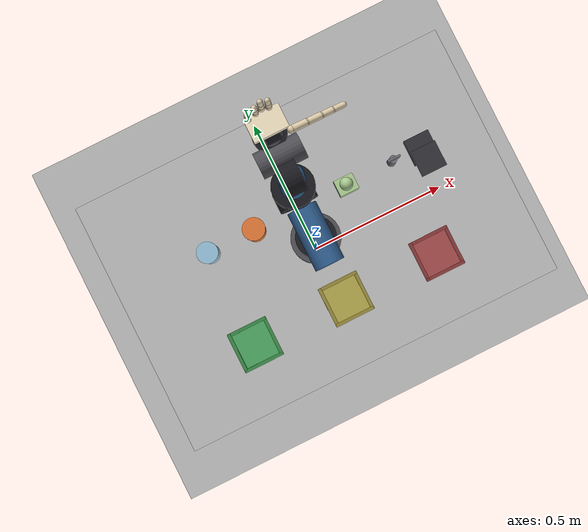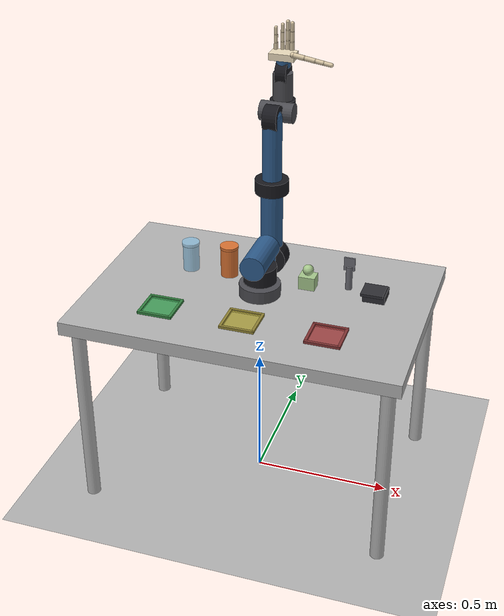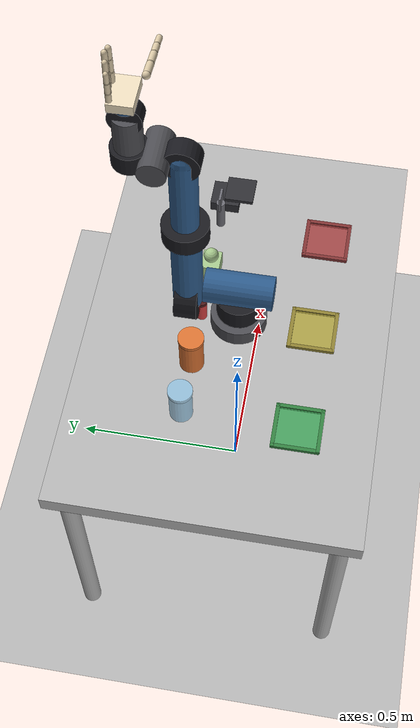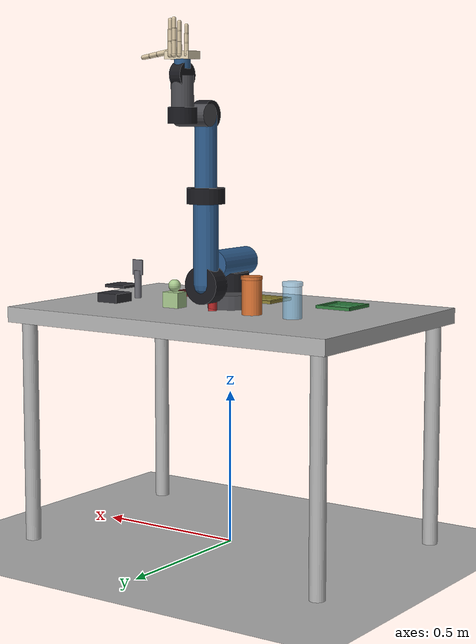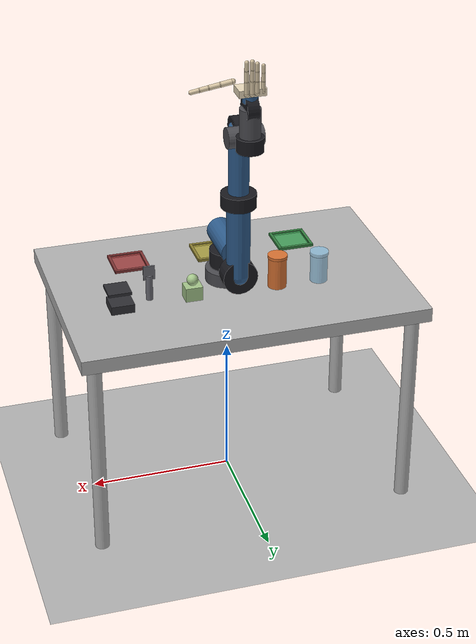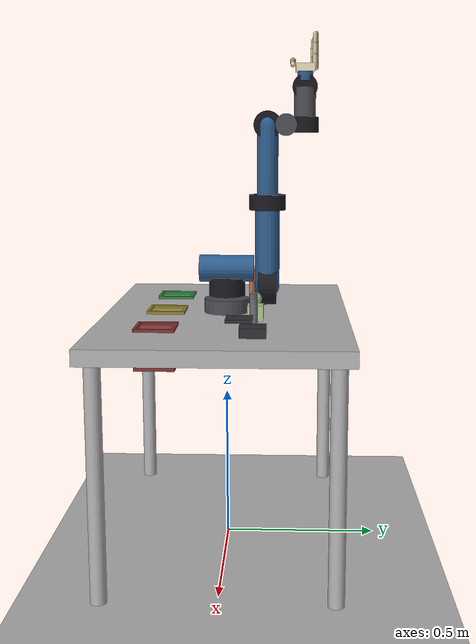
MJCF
<mujoco model="disaster_triage_scene">
  <compiler angle="radian" autolimits="true"
            coordinate="local" inertiafromgeom="true"
            discardvisual="false" />
  <option timestep="0.002" integrator="implicitfast" iterations="50"
          solver="Newton" gravity="0 0 -9.81" />

  <!-- DEFAULTS — class hierarchy for the whole scene               -->
  <default>
    <joint armature="0.05" damping="0.5" limited="true" />
    <geom condim="4" friction="1.0 0.05 0.02" rgba="0.7 0.7 0.7 1" />
    <position kp="60" ctrlrange="-1 1" />
    <light cutoff="45" exponent="10" directional="true" />
    <camera fovy="55" />

    <default class="ur5e">
      <joint range="-6.28 6.28" damping="20.0" armature="0.1" frictionloss="0.05" />
      <geom rgba="0.25 0.25 0.28 1" condim="4" friction="0.7 0.05 0.02" />
      <position kp="2000" kv="50" forcerange="-2000 2000" ctrlrange="-6.28 6.28" />
    </default>

    <default class="shadow_finger">
      <joint range="-1.57 1.57" damping="0.5" armature="0.005" />
      <geom rgba="0.85 0.78 0.65 1" condim="6" friction="1.5 0.05 0.02" />
      <position kp="30" kv="3" ctrlrange="-1.57 1.57" forcerange="-1.5 1.5" />
    </default>

    <default class="fragile">
      <geom rgba="0.55 0.78 0.92 0.7" condim="6" friction="1.5 0.10 0.05" />
      <joint damping="0.5" armature="0.001" />
    </default>
    <default class="sturdy">
      <geom rgba="0.85 0.45 0.20 1" condim="4" friction="1.2 0.10 0.05" />
      <joint damping="2.0" armature="0.01" />
    </default>
    <default class="hazardous">
      <geom rgba="0.85 0.18 0.18 0.85" condim="6" friction="0.5 0.05 0.02" />
      <joint damping="1.0" armature="0.005" />
    </default>
    <default class="soft">
      <geom rgba="0.65 0.78 0.55 1" condim="4" friction="1.5 0.15 0.08" />
      <joint damping="3.0" armature="0.005" />
    </default>
    <default class="sharp">
      <geom rgba="0.42 0.42 0.45 1" condim="6" friction="0.9 0.05 0.02" />
      <joint damping="1.5" armature="0.005" />
    </default>

    <default class="tactile_sensor">
      <site group="3" rgba="0.1 0.9 0.3 0.4" size="0.006 0.006 0.006" />
    </default>
  </default>

  <!-- ASSETS — textures                                            -->
  <asset>
    <texture name="tex_floor" type="2d" builtin="gradient"
            rgb1="0.18 0.18 0.22" rgb2="0.32 0.32 0.36" width="256" height="256" />
    <texture builtin="gradient" type="skybox" rgb1="0.4 0.5 0.7" rgb2="0.0 0.0 0.0"
            width="256" height="256" />
    <material name="mat_floor"  texture="tex_floor" specular="0.0" shininess="0.0" />
    <material name="mat_table"  rgba="0.55 0.42 0.28 1" specular="0.2" shininess="0.3" />
  </asset>

  <visual>
    <map fogstart="3" fogend="10" znear="0.05" zfar="50" />
    <quality shadowsize="2048" offsamples="4" />
    <global azimuth="-30" elevation="-20" offwidth="1280" offheight="720" />
    <scale framewidth="0.003" />
  </visual>

  <worldbody>
    <!-- Floor -->
    <geom name="floor" type="plane" size="3 3 0.1" material="mat_floor"
          condim="3" friction="0.8 0.05 0.02" />

    <!-- Lights -->
    <light name="key_light" pos="-1.5 -1.5 2.5" dir="0.4 0.4 -0.8"
           diffuse="0.7 0.7 0.7" castshadow="true" />
    <light name="fill_light" pos="1.5 -1.0 2.0" dir="-0.4 0.3 -0.8"
           diffuse="0.4 0.4 0.5" castshadow="false" />
    <light name="rim_light" pos="0 2.0 1.5" dir="0 -0.7 -0.5"
           diffuse="0.3 0.3 0.3" castshadow="false" />

    <!-- VIRTUAL CAMERAS — front / side / top / wrist                 -->
    <camera name="cam_front" pos="0.9 -0.9 1.4" xyaxes="-0.7 -0.7 0 -0.5 0.5 0.7"
            fovy="50" />
    <camera name="cam_side"  pos="-1.0 0 1.2" xyaxes="0 -1 0 -0.7 0 0.7"
            fovy="50" />
    <camera name="cam_top"   pos="0 0 1.6" xyaxes="1 0 0 0 -1 0" fovy="45" />
    <camera name="cam_wrist" pos="0 0 0" xyaxes="1 0 0 0 -1 0" fovy="60" />

    <!-- WORKBENCH TABLE — 1.2m × 0.8m × 0.75m                         -->
    <body name="table" pos="0 0 0.375">
      <geom name="geom_table_top" type="box" size="0.60 0.40 0.025"
            pos="0 0 0.375" material="mat_table" mass="15.0"
            friction="2.0 0.20 0.10" />
      <geom name="geom_table_leg1" type="cylinder" size="0.025 0.375"
            pos="-0.55 -0.35 0" material="mat_table" mass="1.0" />
      <geom name="geom_table_leg2" type="cylinder" size="0.025 0.375"
            pos="0.55 -0.35 0" material="mat_table" mass="1.0" />
      <geom name="geom_table_leg3" type="cylinder" size="0.025 0.375"
            pos="-0.55 0.35 0" material="mat_table" mass="1.0" />
      <geom name="geom_table_leg4" type="cylinder" size="0.025 0.375"
            pos="0.55 0.35 0" material="mat_table" mass="1.0" />
    </body>

    <!-- ROBOT: UR5e (6-DOF) + Shadow Hand Lite (16-DOF)               -->
    <body name="base_link" pos="0 0 0.781">
      <inertial pos="0 0 0" mass="2.0" diaginertia="0.005 0.005 0.005" />
      <geom name="base_geom" type="cylinder" size="0.075 0.040" rgba="0.30 0.30 0.32 1" />

      <!-- Shoulder joint (z-axis, base rotation). -->
      <body name="shoulder_link" pos="0 0 0.080">
        <inertial pos="0 0 0" mass="2.0" diaginertia="0.008 0.008 0.008" />
        <joint name="shoulder_pan_joint" axis="0 0 1" class="ur5e" range="-6.28 6.28" />
        <geom name="sh_joint_geom" type="cylinder" size="0.060 0.030"
              rgba="0.10 0.10 0.12 1" />
        <geom name="sh_link_geom"  type="cylinder" size="0.045 0.090"
              euler="1.5708 0 0" pos="0 0 0.060" rgba="0.18 0.36 0.55 1" />

        <!-- Upper arm (y-axis, shoulder lift). -->
        <body name="upper_arm_link" pos="0 0.135 0">
          <inertial pos="0 0 0.140" mass="3.42" diaginertia="0.025 0.025 0.005" />
          <joint name="shoulder_lift_joint" axis="0 1 0" class="ur5e"
                 range="-6.28 6.28" />
          <geom name="ua_joint_geom" type="cylinder" size="0.060 0.030"
                euler="1.5708 0 0" rgba="0.10 0.10 0.12 1" />
          <geom name="ua_link_geom"  type="capsule" size="0.040"
                fromto="0 0 0 0 0 0.280" rgba="0.18 0.36 0.55 1" />

          <!-- Forearm (y-axis, elbow). -->
          <body name="forearm_link" pos="0 0 0.280">
            <inertial pos="0 0 0.130" mass="1.26" diaginertia="0.010 0.010 0.002" />
            <joint name="elbow_joint" axis="0 1 0" class="ur5e" range="-3.14 3.14" />
            <geom name="fa_joint_geom" type="cylinder" size="0.060 0.025"
                  rgba="0.10 0.10 0.12 1" />
            <geom name="fa_link_geom"  type="capsule" size="0.035"
                  fromto="0 0 0 0 0 0.250" rgba="0.18 0.36 0.55 1" />

            <!-- Wrist 1 (x-axis). -->
            <body name="wrist_1_link" pos="0 0 0.250">
              <inertial pos="0 0 0" mass="0.80" diaginertia="0.002 0.002 0.002" />
              <joint name="wrist_1_joint" axis="1 0 0" class="ur5e" range="-6.28 6.28" />
              <geom name="w1_joint_geom" type="cylinder" size="0.045 0.025"
                    euler="0 1.5708 0" rgba="0.10 0.10 0.12 1" />
              <geom name="w1_link_geom"  type="cylinder" size="0.035 0.060"
                    euler="0 1.5708 0" pos="0 0.060 0" rgba="0.30 0.30 0.32 1" />

              <!-- Wrist 2 (y-axis). -->
              <body name="wrist_2_link" pos="0 0.120 0">
                <inertial pos="0 0 0" mass="0.80" diaginertia="0.002 0.002 0.002" />
                <joint name="wrist_2_joint" axis="0 1 0" class="ur5e" range="-6.28 6.28" />
                <geom name="w2_joint_geom" type="cylinder" size="0.045 0.025"
                      rgba="0.10 0.10 0.12 1" />
                <geom name="w2_link_geom"  type="cylinder" size="0.035 0.060"
                      pos="0 0 0.060" rgba="0.30 0.30 0.32 1" />

                <!-- Wrist 3 (x-axis) — tool flange. -->
                <body name="wrist_3_link" pos="0 0 0.120">
                  <inertial pos="0 0 0.040" mass="0.20"
                            diaginertia="0.0008 0.0008 0.0008" />
                  <joint name="wrist_3_joint" axis="1 0 0" class="ur5e"
                         range="-6.28 6.28" />
                  <geom name="w3_joint_geom" type="cylinder" size="0.040 0.020"
                        euler="0 1.5708 0" rgba="0.10 0.10 0.12 1" />
                  <geom name="w3_flange_geom" type="cylinder" size="0.025 0.020"
                        pos="0 0 0.040" rgba="0.18 0.36 0.55 1" />
                  <!-- Standard UR tool0 site — Shadow Hand is welded here. -->
                  <site name="tool0" pos="0 0 0.060" size="0.015"
                        rgba="1 0.3 0.3 0.5" group="3" />

                  <!-- SHADOW HAND LITE (16-DOF) — welded to UR5e flange     -->
                  <!--   No joint = fixed weld to parent (wrist_3_link).     -->
                  <body name="palm" childclass="shadow_finger" pos="0 0 0.060">
                    <inertial pos="0 0 0" mass="0.35" diaginertia="0.001 0.002 0.0025" />
                    <geom name="palm_geom" type="box" size="0.045 0.030 0.012"
                          rgba="0.92 0.86 0.74 1" condim="6" friction="1.5 0.05 0.02" />
                    <site name="tactile_palm" class="tactile_sensor"
                          pos="0 0.025 0.012" size="0.020 0.020 0.002" type="box" />

                    <!-- THUMB (4 DOF) -->
                    <body name="link_TH1" pos="0.045 -0.040 0.018" euler="0 30 35">
                      <joint name="A_THJ1" type="hinge" axis="1 0 0" class="shadow_finger"
                             range="-1.57 1.57" />
                      <geom name="geom_link_TH1" type="capsule" fromto="0 0 0 0 0 -0.040"
                            size="0.009" rgba="0.85 0.78 0.65 1" condim="6" />
                      <geom name="knuckle_link_TH1" type="sphere" size="0.0095"
                            pos="0 0 0" rgba="0.85 0.78 0.65 1" />
                      <body name="link_TH2" pos="0 0 -0.040">
                        <joint name="A_THJ2" type="hinge" axis="0 1 0" class="shadow_finger"
                               range="-1.57 1.57" />
                        <geom name="geom_link_TH2" type="capsule" fromto="0 0 0 0 0 -0.038"
                              size="0.0085" rgba="0.85 0.78 0.65 1" condim="6" />
                        <geom name="knuckle_link_TH2" type="sphere" size="0.009"
                              pos="0 0 0" rgba="0.85 0.78 0.65 1" />
                        <body name="link_TH3" pos="0 0 -0.038">
                          <joint name="A_THJ3" type="hinge" axis="0 1 0" class="shadow_finger"
                                 range="-1.57 1.57" />
                          <geom name="geom_link_TH3" type="capsule" fromto="0 0 0 0 0 -0.030"
                                size="0.008" rgba="0.85 0.78 0.65 1" condim="6" />
                          <geom name="knuckle_link_TH3" type="sphere" size="0.0085"
                                pos="0 0 0" rgba="0.85 0.78 0.65 1" />
                          <body name="link_TH4" pos="0 0 -0.030">
                            <joint name="A_THJ4" type="hinge" axis="0 1 0" class="shadow_finger"
                                   range="-1.57 1.57" />
                            <geom name="geom_link_TH4" type="capsule" fromto="0 0 0 0 0 -0.028"
                                  size="0.0075" rgba="0.85 0.78 0.65 1" condim="6" />
                            <geom name="knuckle_link_TH4" type="sphere" size="0.008"
                                  pos="0 0 0" rgba="0.85 0.78 0.65 1" />
                            <site name="tactile_TH" class="tactile_sensor"
                                  pos="0 0 -0.026" size="0.008 0.008 0.004" type="box" />
                          </body>
                        </body>
                      </body>
                    </body>

                    <!-- INDEX (3 DOF) -->
                    <body name="link_IF1" pos="0.022 0.030 0.000" euler="0 0 -8">
                      <joint name="A_IFJ1" type="hinge" axis="1 0 0" class="shadow_finger"
                             range="-1.57 1.57" />
                      <geom name="geom_link_IF1" type="capsule" fromto="0 0 0 0 0 0.040"
                            size="0.008" rgba="0.85 0.78 0.65 1" condim="6" />
                      <geom name="knuckle_link_IF1" type="sphere" size="0.0085"
                            pos="0 0 0" rgba="0.85 0.78 0.65 1" />
                      <body name="link_IF2" pos="0 0 0.040">
                        <joint name="A_IFJ2" type="hinge" axis="0 1 0" class="shadow_finger"
                               range="-1.57 1.57" />
                        <geom name="geom_link_IF2" type="capsule" fromto="0 0 0 0 0 0.035"
                              size="0.0075" rgba="0.85 0.78 0.65 1" condim="6" />
                        <geom name="knuckle_link_IF2" type="sphere" size="0.008"
                              pos="0 0 0" rgba="0.85 0.78 0.65 1" />
                        <body name="link_IF3" pos="0 0 0.035">
                          <joint name="A_IFJ3" type="hinge" axis="0 1 0" class="shadow_finger"
                                 range="-1.57 1.57" />
                          <geom name="geom_link_IF3" type="capsule" fromto="0 0 0 0 0 0.028"
                                size="0.007" rgba="0.85 0.78 0.65 1" condim="6" />
                          <geom name="knuckle_link_IF3" type="sphere" size="0.0075"
                                pos="0 0 0" rgba="0.85 0.78 0.65 1" />
                          <site name="tactile_IF" class="tactile_sensor"
                                pos="0 0 0.026" size="0.008 0.008 0.004" type="box" />
                        </body>
                      </body>
                    </body>

                    <!-- MIDDLE (3 DOF) -->
                    <body name="link_MF1" pos="0.005 0.034 0.000" euler="0 0 0">
                      <joint name="A_MFJ1" type="hinge" axis="1 0 0" class="shadow_finger"
                             range="-1.57 1.57" />
                      <geom name="geom_link_MF1" type="capsule" fromto="0 0 0 0 0 0.042"
                            size="0.008" rgba="0.85 0.78 0.65 1" condim="6" />
                      <geom name="knuckle_link_MF1" type="sphere" size="0.0085"
                            pos="0 0 0" rgba="0.85 0.78 0.65 1" />
                      <body name="link_MF2" pos="0 0 0.042">
                        <joint name="A_MFJ2" type="hinge" axis="0 1 0" class="shadow_finger"
                               range="-1.57 1.57" />
                        <geom name="geom_link_MF2" type="capsule" fromto="0 0 0 0 0 0.036"
                              size="0.0075" rgba="0.85 0.78 0.65 1" condim="6" />
                        <geom name="knuckle_link_MF2" type="sphere" size="0.008"
                              pos="0 0 0" rgba="0.85 0.78 0.65 1" />
                        <body name="link_MF3" pos="0 0 0.036">
                          <joint name="A_MFJ3" type="hinge" axis="0 1 0" class="shadow_finger"
                                 range="-1.57 1.57" />
                          <geom name="geom_link_MF3" type="capsule" fromto="0 0 0 0 0 0.028"
                                size="0.007" rgba="0.85 0.78 0.65 1" condim="6" />
                          <geom name="knuckle_link_MF3" type="sphere" size="0.0075"
                                pos="0 0 0" rgba="0.85 0.78 0.65 1" />
                          <site name="tactile_MF" class="tactile_sensor"
                                pos="0 0 0.026" size="0.008 0.008 0.004" type="box" />
                        </body>
                      </body>
                    </body>

                    <!-- RING (3 DOF) -->
                    <body name="link_RF1" pos="-0.012 0.030 0.000" euler="0 0 8">
                      <joint name="A_RFJ1" type="hinge" axis="1 0 0" class="shadow_finger"
                             range="-1.57 1.57" />
                      <geom name="geom_link_RF1" type="capsule" fromto="0 0 0 0 0 0.038"
                            size="0.0075" rgba="0.85 0.78 0.65 1" condim="6" />
                      <geom name="knuckle_link_RF1" type="sphere" size="0.008"
                            pos="0 0 0" rgba="0.85 0.78 0.65 1" />
                      <body name="link_RF2" pos="0 0 0.038">
                        <joint name="A_RFJ2" type="hinge" axis="0 1 0" class="shadow_finger"
                               range="-1.57 1.57" />
                        <geom name="geom_link_RF2" type="capsule" fromto="0 0 0 0 0 0.032"
                              size="0.007" rgba="0.85 0.78 0.65 1" condim="6" />
                        <geom name="knuckle_link_RF2" type="sphere" size="0.0075"
                              pos="0 0 0" rgba="0.85 0.78 0.65 1" />
                        <body name="link_RF3" pos="0 0 0.032">
                          <joint name="A_RFJ3" type="hinge" axis="0 1 0" class="shadow_finger"
                                 range="-1.57 1.57" />
                          <geom name="geom_link_RF3" type="capsule" fromto="0 0 0 0 0 0.026"
                                size="0.0065" rgba="0.85 0.78 0.65 1" condim="6" />
                          <geom name="knuckle_link_RF3" type="sphere" size="0.007"
                                pos="0 0 0" rgba="0.85 0.78 0.65 1" />
                          <site name="tactile_RF" class="tactile_sensor"
                                pos="0 0 0.024" size="0.008 0.008 0.004" type="box" />
                        </body>
                      </body>
                    </body>

                    <!-- LITTLE (3 DOF) -->
                    <body name="link_LF1" pos="-0.034 0.024 0.000" euler="0 0 18">
                      <joint name="A_LFJ1" type="hinge" axis="1 0 0" class="shadow_finger"
                             range="-1.57 1.57" />
                      <geom name="geom_link_LF1" type="capsule" fromto="0 0 0 0 0 0.034"
                            size="0.007" rgba="0.85 0.78 0.65 1" condim="6" />
                      <geom name="knuckle_link_LF1" type="sphere" size="0.0075"
                            pos="0 0 0" rgba="0.85 0.78 0.65 1" />
                      <body name="link_LF2" pos="0 0 0.034">
                        <joint name="A_LFJ2" type="hinge" axis="0 1 0" class="shadow_finger"
                               range="-1.57 1.57" />
                        <geom name="geom_link_LF2" type="capsule" fromto="0 0 0 0 0 0.028"
                              size="0.0065" rgba="0.85 0.78 0.65 1" condim="6" />
                        <geom name="knuckle_link_LF2" type="sphere" size="0.007"
                              pos="0 0 0" rgba="0.85 0.78 0.65 1" />
                        <body name="link_LF3" pos="0 0 0.028">
                          <joint name="A_LFJ3" type="hinge" axis="0 1 0" class="shadow_finger"
                                 range="-1.57 1.57" />
                          <geom name="geom_link_LF3" type="capsule" fromto="0 0 0 0 0 0.024"
                                size="0.006" rgba="0.85 0.78 0.65 1" condim="6" />
                          <geom name="knuckle_link_LF3" type="sphere" size="0.0065"
                                pos="0 0 0" rgba="0.85 0.78 0.65 1" />
                          <site name="tactile_LF" class="tactile_sensor"
                                pos="0 0 0.022" size="0.008 0.008 0.004" type="box" />
                        </body>
                      </body>
                    </body>
                  </body>
                </body>
              </body>
            </body>
          </body>
        </body>
      </body>
    </body>

    <!-- DISASTER TRIAGE OBJECTS (objects, bins, container with lid)  -->

    <!-- OBJECT 1: Fragile glass vial (free rigid body, like other objects) -->
    <body name="obj_glass" pos="-0.30 0.10 0.825">
      <freejoint name="free_glass" />
      <inertial pos="0 0 0.05" mass="0.50" diaginertia="2e-3 2e-3 1e-3" />
      <geom name="geom_obj_glass" type="cylinder"
            size="0.030 0.050" rgba="0.55 0.78 0.92 0.7" class="fragile" />
      <geom name="geom_obj_glass_cap" type="cylinder"
            size="0.032 0.006" pos="0 0 0.056" rgba="0.55 0.78 0.92 0.7"
            class="fragile" />
      <site name="label_glass" pos="0 0 0.050" size="0.015"
           rgba="0.55 0.78 0.92 0.6" group="3" />
    </body>

    <!-- OBJECT 2: Sturdy metal can -->
    <body name="obj_can" pos="-0.15 0.10 0.830">
      <freejoint name="free_can" />
      <inertial pos="0 0 0.045" mass="1.00" diaginertia="5e-3 5e-3 2e-3" />
      <geom name="geom_obj_can" type="cylinder"
            size="0.032 0.055" rgba="0.85 0.45 0.20 1" class="sturdy" />
      <geom name="geom_obj_can_top" type="cylinder"
            size="0.034 0.005" pos="0 0 0.060" rgba="0.85 0.45 0.20 1"
            class="sturdy" />
      <site name="label_can" pos="0 0 0.055" size="0.015"
           rgba="0.85 0.45 0.20 0.6" group="3" />
    </body>

    <!-- OBJECT 3: Hazardous chemical vial -->
    <body name="obj_vial" pos="0.0 0.10 0.805">
      <freejoint name="free_vial" />
      <inertial pos="0 0 0.030" mass="0.40" diaginertia="1e-3 1e-3 5e-4" />
      <geom name="geom_obj_vial_body" type="cylinder"
            size="0.014 0.030" rgba="0.85 0.18 0.18 0.85" class="hazardous" />
      <geom name="geom_obj_vial_cap" type="cylinder"
            size="0.015 0.005" pos="0 0 0.035" rgba="0.30 0.10 0.10 1"
            class="hazardous" />
      <site name="label_vial" pos="0 0 0.030" size="0.012"
           rgba="0.85 0.18 0.18 0.8" group="3" />
    </body>

    <!-- OBJECT 4: Soft plush toy -->
    <body name="obj_toy" pos="0.15 0.10 0.800">
      <freejoint name="free_toy" />
      <inertial pos="0 0 0.025" mass="0.30" diaginertia="1e-3 1e-3 5e-4" />
      <geom name="geom_obj_toy_body" type="box"
            size="0.030 0.025 0.025" rgba="0.65 0.78 0.55 1" class="soft" />
      <geom name="geom_obj_toy_head" type="sphere"
            size="0.020" pos="0 0 0.045" rgba="0.65 0.78 0.55 1" class="soft" />
      <site name="label_toy" pos="0 0 0.025" size="0.012"
           rgba="0.65 0.78 0.55 0.7" group="3" />
    </body>

    <!-- OBJECT 5: Sharp broken tool -->
    <body name="obj_tool" pos="0.30 0.10 0.820">
      <freejoint name="free_tool" />
      <inertial pos="0 0 0.020" mass="0.60" diaginertia="2e-3 2e-3 1e-3" />
      <geom name="geom_obj_tool_handle" type="cylinder"
            size="0.012 0.045" pos="0 0 0.020" rgba="0.42 0.42 0.45 1" class="sharp" />
      <geom name="geom_obj_tool_blade" type="box"
            size="0.020 0.003 0.025" pos="0 0 0.075" rgba="0.42 0.42 0.45 1"
            class="sharp" />
      <site name="label_tool" pos="0 0 0.020" size="0.012"
           rgba="0.42 0.42 0.45 0.7" group="3" />
    </body>

    <!-- TRIAGE BIN: Fragile (green) -->
    <body name="bin_fragile" pos="-0.30 -0.20 0.720">
      <geom name="geom_bin_fragile" type="box" size="0.060 0.060 0.060"
            rgba="0.25 0.65 0.35 0.85" mass="2.0" />
      <geom name="geom_bin_fragile_wall1" type="box" size="0.062 0.005 0.065"
            pos="0 0.058 0" rgba="0.20 0.50 0.25 1" mass="0.5" />
      <geom name="geom_bin_fragile_wall2" type="box" size="0.062 0.005 0.065"
            pos="0 -0.058 0" rgba="0.20 0.50 0.25 1" mass="0.5" />
      <geom name="geom_bin_fragile_wall3" type="box" size="0.005 0.062 0.065"
            pos="0.058 0 0" rgba="0.20 0.50 0.25 1" mass="0.5" />
      <geom name="geom_bin_fragile_wall4" type="box" size="0.005 0.062 0.065"
            pos="-0.058 0 0" rgba="0.20 0.50 0.25 1" mass="0.5" />
      <site name="bin_fragile_target" pos="0 0 0.060" size="0.040"
           rgba="0.25 0.65 0.35 0.4" group="3" type="box" />
    </body>

    <!-- TRIAGE BIN: Sturdy (yellow) -->
    <body name="bin_sturdy" pos="0.0 -0.20 0.720">
      <geom name="geom_bin_sturdy" type="box" size="0.060 0.060 0.060"
            rgba="0.70 0.65 0.25 0.85" mass="2.0" />
      <geom name="geom_bin_sturdy_wall1" type="box" size="0.062 0.005 0.065"
            pos="0 0.058 0" rgba="0.55 0.50 0.20 1" mass="0.5" />
      <geom name="geom_bin_sturdy_wall2" type="box" size="0.062 0.005 0.065"
            pos="0 -0.058 0" rgba="0.55 0.50 0.20 1" mass="0.5" />
      <geom name="geom_bin_sturdy_wall3" type="box" size="0.005 0.062 0.065"
            pos="0.058 0 0" rgba="0.55 0.50 0.20 1" mass="0.5" />
      <geom name="geom_bin_sturdy_wall4" type="box" size="0.005 0.062 0.065"
            pos="-0.058 0 0" rgba="0.55 0.50 0.20 1" mass="0.5" />
      <site name="bin_sturdy_target" pos="0 0 0.060" size="0.040"
           rgba="0.70 0.65 0.25 0.4" group="3" type="box" />
    </body>

    <!-- TRIAGE BIN: Hazardous (red) -->
    <body name="bin_hazardous" pos="0.30 -0.20 0.720">
      <geom name="geom_bin_hazardous" type="box" size="0.060 0.060 0.060"
            rgba="0.65 0.25 0.25 0.85" mass="2.0" />
      <geom name="geom_bin_hazardous_wall1" type="box" size="0.062 0.005 0.065"
            pos="0 0.058 0" rgba="0.50 0.20 0.20 1" mass="0.5" />
      <geom name="geom_bin_hazardous_wall2" type="box" size="0.062 0.005 0.065"
            pos="0 -0.058 0" rgba="0.50 0.20 0.20 1" mass="0.5" />
      <geom name="geom_bin_hazardous_wall3" type="box" size="0.005 0.062 0.065"
            pos="0.058 0 0" rgba="0.50 0.20 0.20 1" mass="0.5" />
      <geom name="geom_bin_hazardous_wall4" type="box" size="0.005 0.062 0.065"
            pos="-0.058 0 0" rgba="0.50 0.20 0.20 1" mass="0.5" />
      <site name="bin_hazardous_target" pos="0 0 0.060" size="0.040"
           rgba="0.65 0.25 0.25 0.4" group="3" type="box" />
    </body>

    <!-- EQUALITY CONSTRAINT DEMO: Hinged lid on a small container -->
    <body name="container_base" pos="0.40 0.10 0.790">
      <geom name="geom_container_base" type="box" size="0.040 0.040 0.015"
            rgba="0.18 0.18 0.20 1" mass="0.5" />
    </body>
    <body name="container_lid" pos="0.40 0.10 0.825">
      <joint name="lid_hinge" type="hinge" axis="1 0 0"
             range="-0.05 1.57" damping="0.5" />
      <geom name="geom_container_lid" type="box" size="0.040 0.040 0.005"
            rgba="0.18 0.18 0.20 1" mass="0.10" pos="0 -0.040 0" />
      <site name="lid_snap_target" pos="0 -0.040 0.005" size="0.008"
           rgba="1 1 0 0.5" group="3" />
    </body>
  </worldbody>

  <!-- ACTUATORS — UR5e (6) + Shadow Hand Lite (16) = 22 total       -->
  <actuator>
    <position name="act_shoulder_pan"   joint="shoulder_pan_joint"   class="ur5e" />
    <position name="act_shoulder_lift"  joint="shoulder_lift_joint"  class="ur5e" />
    <position name="act_elbow"          joint="elbow_joint"          class="ur5e" />
    <position name="act_wrist_1"        joint="wrist_1_joint"        class="ur5e" />
    <position name="act_wrist_2"        joint="wrist_2_joint"        class="ur5e" />
    <position name="act_wrist_3"        joint="wrist_3_joint"        class="ur5e" />
    <position name="act_THJ1" joint="A_THJ1" class="shadow_finger"
              kp="30" kv="3" ctrlrange="-1.57 1.57" forcerange="-1.5 1.5" />
    <position name="act_THJ2" joint="A_THJ2" class="shadow_finger"
              kp="30" kv="3" ctrlrange="-1.57 1.57" forcerange="-1.5 1.5" />
    <position name="act_THJ3" joint="A_THJ3" class="shadow_finger"
              kp="30" kv="3" ctrlrange="-1.57 1.57" forcerange="-1.5 1.5" />
    <position name="act_THJ4" joint="A_THJ4" class="shadow_finger"
              kp="30" kv="3" ctrlrange="-1.57 1.57" forcerange="-1.5 1.5" />
    <position name="act_IFJ1" joint="A_IFJ1" class="shadow_finger"
              kp="30" kv="3" ctrlrange="-1.57 1.57" forcerange="-1.5 1.5" />
    <position name="act_IFJ2" joint="A_IFJ2" class="shadow_finger"
              kp="30" kv="3" ctrlrange="-1.57 1.57" forcerange="-1.5 1.5" />
    <position name="act_IFJ3" joint="A_IFJ3" class="shadow_finger"
              kp="30" kv="3" ctrlrange="-1.57 1.57" forcerange="-1.5 1.5" />
    <position name="act_MFJ1" joint="A_MFJ1" class="shadow_finger"
              kp="30" kv="3" ctrlrange="-1.57 1.57" forcerange="-1.5 1.5" />
    <position name="act_MFJ2" joint="A_MFJ2" class="shadow_finger"
              kp="30" kv="3" ctrlrange="-1.57 1.57" forcerange="-1.5 1.5" />
    <position name="act_MFJ3" joint="A_MFJ3" class="shadow_finger"
              kp="30" kv="3" ctrlrange="-1.57 1.57" forcerange="-1.5 1.5" />
    <position name="act_RFJ1" joint="A_RFJ1" class="shadow_finger"
              kp="30" kv="3" ctrlrange="-1.57 1.57" forcerange="-1.5 1.5" />
    <position name="act_RFJ2" joint="A_RFJ2" class="shadow_finger"
              kp="30" kv="3" ctrlrange="-1.57 1.57" forcerange="-1.5 1.5" />
    <position name="act_RFJ3" joint="A_RFJ3" class="shadow_finger"
              kp="30" kv="3" ctrlrange="-1.57 1.57" forcerange="-1.5 1.5" />
    <position name="act_LFJ1" joint="A_LFJ1" class="shadow_finger"
              kp="30" kv="3" ctrlrange="-1.57 1.57" forcerange="-1.5 1.5" />
    <position name="act_LFJ2" joint="A_LFJ2" class="shadow_finger"
              kp="30" kv="3" ctrlrange="-1.57 1.57" forcerange="-1.5 1.5" />
    <position name="act_LFJ3" joint="A_LFJ3" class="shadow_finger"
              kp="30" kv="3" ctrlrange="-1.57 1.57" forcerange="-1.5 1.5" />
  </actuator>

  <!-- SENSORS                                                       -->
  <sensor>
    <!-- Tactile sensors (5 fingertip + 1 palm) -->
    <touch name="s_tactile_TH"   site="tactile_TH" />
    <touch name="s_tactile_IF"   site="tactile_IF" />
    <touch name="s_tactile_MF"   site="tactile_MF" />
    <touch name="s_tactile_RF"   site="tactile_RF" />
    <touch name="s_tactile_LF"   site="tactile_LF" />
    <touch name="s_tactile_palm" site="tactile_palm" />

    <!-- UR5e joint positions & velocities -->
    <jointpos name="s_shoulder_pan"  joint="shoulder_pan_joint" />
    <jointpos name="s_shoulder_lift" joint="shoulder_lift_joint" />
    <jointpos name="s_elbow"         joint="elbow_joint" />
    <jointpos name="s_wrist_1"       joint="wrist_1_joint" />
    <jointpos name="s_wrist_2"       joint="wrist_2_joint" />
    <jointpos name="s_wrist_3"       joint="wrist_3_joint" />
    <jointvel  name="s_shoulder_pan_vel"  joint="shoulder_pan_joint" />
    <jointvel  name="s_shoulder_lift_vel" joint="shoulder_lift_joint" />
    <jointvel  name="s_elbow_vel"         joint="elbow_joint" />
    <jointvel  name="s_wrist_1_vel"       joint="wrist_1_joint" />
    <jointvel  name="s_wrist_2_vel"       joint="wrist_2_joint" />
    <jointvel  name="s_wrist_3_vel"       joint="wrist_3_joint" />

    <!-- Shadow Hand joint positions -->
    <jointpos name="s_THJ1" joint="A_THJ1" />
    <jointpos name="s_THJ2" joint="A_THJ2" />
    <jointpos name="s_THJ3" joint="A_THJ3" />
    <jointpos name="s_THJ4" joint="A_THJ4" />
    <jointpos name="s_IFJ1" joint="A_IFJ1" />
    <jointpos name="s_IFJ2" joint="A_IFJ2" />
    <jointpos name="s_IFJ3" joint="A_IFJ3" />
    <jointpos name="s_MFJ1" joint="A_MFJ1" />
    <jointpos name="s_MFJ2" joint="A_MFJ2" />
    <jointpos name="s_MFJ3" joint="A_MFJ3" />
    <jointpos name="s_RFJ1" joint="A_RFJ1" />
    <jointpos name="s_RFJ2" joint="A_RFJ2" />
    <jointpos name="s_RFJ3" joint="A_RFJ3" />
    <jointpos name="s_LFJ1" joint="A_LFJ1" />
    <jointpos name="s_LFJ2" joint="A_LFJ2" />
    <jointpos name="s_LFJ3" joint="A_LFJ3" />

    <!-- Frame positions for task state inference -->
    <framepos name="s_obj_glass_pos" objtype="body" objname="obj_glass" />
    <framepos name="s_obj_can_pos"   objtype="body" objname="obj_can" />
    <framepos name="s_obj_vial_pos"  objtype="body" objname="obj_vial" />
    <framepos name="s_obj_toy_pos"   objtype="body" objname="obj_toy" />
    <framepos name="s_obj_tool_pos"  objtype="body" objname="obj_tool" />
    <framepos name="s_palm_pos"      objtype="body" objname="palm" />
    <framequat name="s_palm_quat"    objtype="body" objname="palm" />
  </sensor>

  <!-- EQUALITY CONSTRAINTS                                          -->
  <!--   1. Lid pivot: lid rotates around the container base edge.   -->
  <!--   2. Hand-to-glass weld: activates when the robot grasps the  -->
  <!--      glass vial, releasing the track constraint.              -->
    <equality>
    <connect name="eq_lid_pivot" active="true"
             body1="container_base" body2="container_lid"
             anchor="0.40 0.060 0.825" />
    <weld name="eq_hand_to_glass" active="false"
          body1="palm" body2="obj_glass"
          relpose="0 0 0 1 0 0 0" />
    </equality>

  <!-- CONTACT EXCLUSIONS                                            -->
  <!--   Explicitly disable contacts between adjacent UR5e links     -->
  <!--   (parent-child default filtering handles direct parent-child -->
  <!--    but not the 2-3 link away contacts that fold back).        -->
  <!--   Also exclude hand <-> forearm, hand <-> wrist collisions    -->
  <!--   that would otherwise fire during finger motion.             -->
  <contact>
    <exclude body1="base_link"        body2="shoulder_link" />
    <exclude body1="shoulder_link"    body2="upper_arm_link" />
    <exclude body1="upper_arm_link"   body2="forearm_link" />
    <exclude body1="forearm_link"     body2="wrist_1_link" />
    <exclude body1="wrist_1_link"     body2="wrist_2_link" />
    <exclude body1="wrist_2_link"     body2="wrist_3_link" />
    <exclude body1="wrist_3_link"     body2="palm" />
    <exclude body1="forearm_link"     body2="palm" />
    <exclude body1="forearm_link"     body2="link_TH1" />
    <exclude body1="forearm_link"     body2="link_TH2" />
    <exclude body1="forearm_link"     body2="link_TH3" />
    <exclude body1="forearm_link"     body2="link_TH4" />
    <exclude body1="forearm_link"     body2="link_IF1" />
    <exclude body1="forearm_link"     body2="link_IF2" />
    <exclude body1="forearm_link"     body2="link_IF3" />
    <exclude body1="forearm_link"     body2="link_MF1" />
    <exclude body1="forearm_link"     body2="link_MF2" />
    <exclude body1="forearm_link"     body2="link_MF3" />
    <exclude body1="forearm_link"     body2="link_RF1" />
    <exclude body1="forearm_link"     body2="link_RF2" />
    <exclude body1="forearm_link"     body2="link_RF3" />
    <exclude body1="forearm_link"     body2="link_LF1" />
    <exclude body1="forearm_link"     body2="link_LF2" />
    <exclude body1="forearm_link"     body2="link_LF3" />
    <exclude body1="wrist_3_link"     body2="link_TH1" />
    <exclude body1="wrist_3_link"     body2="link_IF1" />
    <exclude body1="wrist_3_link"     body2="link_MF1" />
    <exclude body1="wrist_3_link"     body2="link_RF1" />
    <exclude body1="wrist_3_link"     body2="link_LF1" />
    <!-- Exclude forearm <-> table contact so the arm can reach low
         positions without the forearm cylinder hitting the table edge -->
    <exclude body1="forearm_link"     body2="table" />
    <exclude body1="upper_arm_link"   body2="table" />
    <exclude body1="base_link"       body2="obj_glass" />
    <exclude body1="base_link"       body2="obj_can" />
    <exclude body1="base_link"       body2="obj_vial" />
    <exclude body1="base_link"       body2="obj_toy" />
    <exclude body1="base_link"       body2="obj_tool" />
    <exclude body1="shoulder_link"   body2="obj_glass" />
    <exclude body1="shoulder_link"   body2="obj_can" />
    <exclude body1="shoulder_link"   body2="obj_vial" />
    <exclude body1="shoulder_link"   body2="obj_toy" />
    <exclude body1="shoulder_link"   body2="obj_tool" />
    <exclude body1="upper_arm_link"  body2="obj_glass" />
    <exclude body1="upper_arm_link"  body2="obj_can" />
    <exclude body1="upper_arm_link"  body2="obj_vial" />
    <exclude body1="upper_arm_link"  body2="obj_toy" />
    <exclude body1="upper_arm_link"  body2="obj_tool" />
    <exclude body1="forearm_link"    body2="obj_glass" />
    <exclude body1="forearm_link"    body2="obj_can" />
    <exclude body1="forearm_link"    body2="obj_vial" />
    <exclude body1="forearm_link"    body2="obj_toy" />
    <exclude body1="forearm_link"    body2="obj_tool" />
    <exclude body1="wrist_1_link"    body2="obj_glass" />
    <exclude body1="wrist_1_link"    body2="obj_can" />
    <exclude body1="wrist_1_link"    body2="obj_vial" />
    <exclude body1="wrist_1_link"    body2="obj_toy" />
    <exclude body1="wrist_1_link"    body2="obj_tool" />
  </contact>
</mujoco>
